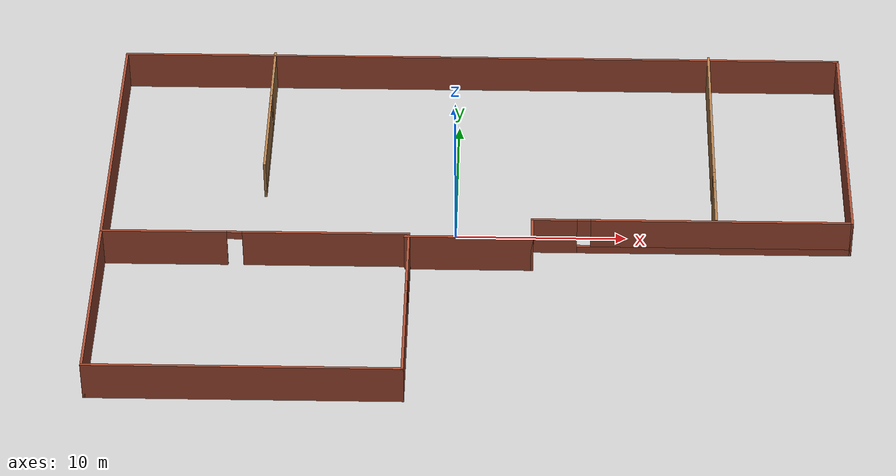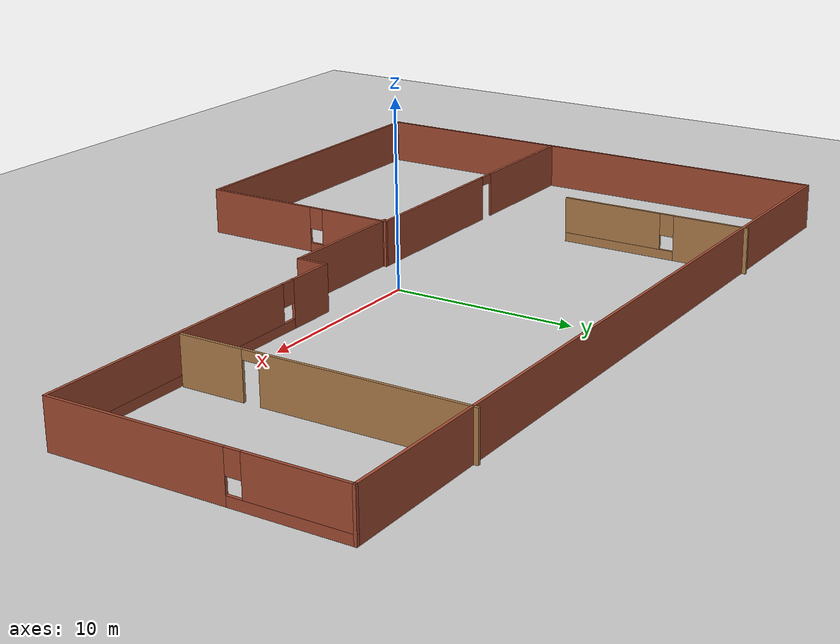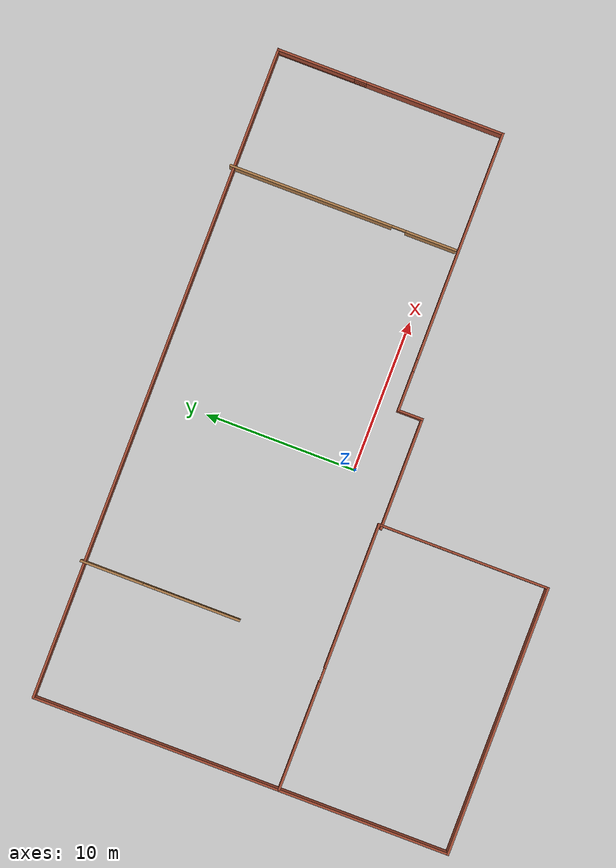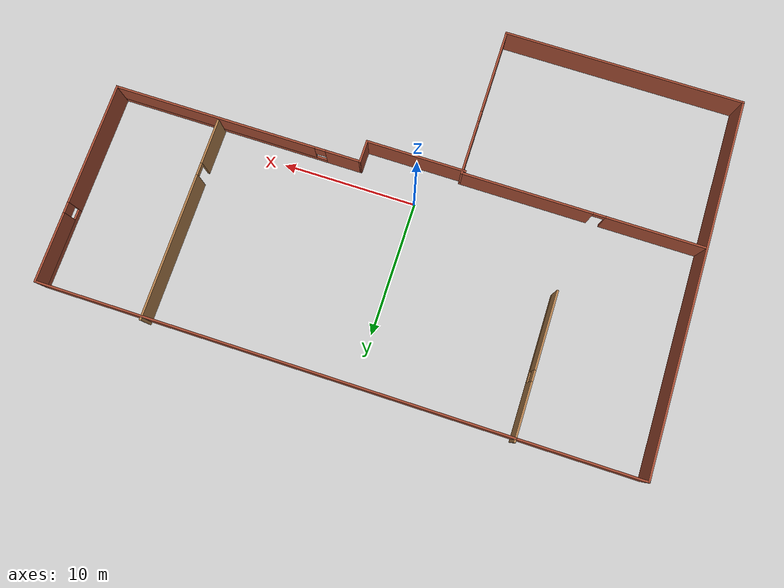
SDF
<sdf version="1.7">
 <world name="default">
  <light name="sun" type="directional">
   <pose>0 0 10 0 -0 0</pose>
   <diffuse>0.8 0.8 0.8 1</diffuse>
   <specular>0.2 0.2 0.2 1</specular>
   <attenuation>
    <range>1000</range>
    <constant>0.9</constant>
    <linear>0.01</linear>
    <quadratic>0.001</quadratic>
   </attenuation>
   <direction>-0.5 0.1 -0.9</direction>
   <spot><inner_angle>0</inner_angle><outer_angle>0</outer_angle><falloff>0</falloff></spot>
  </light>
  <model name="ground_plane">
   <static>1</static>
   <link name="link">
    <collision name="collision">
     <geometry><plane><normal>0 0 1</normal><size>100 100</size></plane></geometry>
     <surface>
      <contact><collide_bitmask>65535</collide_bitmask></contact>
      <friction><ode><mu>100</mu><mu2>50</mu2></ode></friction>
     </surface>
    </collision>
    <visual name="visual">
     <cast_shadows>0</cast_shadows>
     <geometry><plane><normal>0 0 1</normal><size>100 100</size></plane></geometry>
     <material>
      <script><uri>file://media/materials/scripts/gazebo.material</uri><name>Gazebo/Grey</name></script>
     </material>
    </visual>
   </link>
  </model>
  <gravity>0 0 -9.8</gravity>
  <magnetic_field>6e-06 2.3e-05 -4.2e-05</magnetic_field>
  <atmosphere type="adiabatic"/>
  <physics type="ode">
   <max_step_size>0.001</max_step_size>
   <real_time_factor>1</real_time_factor>
   <real_time_update_rate>1000</real_time_update_rate>
  </physics>
  <scene><ambient>0.4 0.4 0.4 1</ambient><background>0.7 0.7 0.7 1</background><shadows>1</shadows></scene>
  <audio><device>default</device></audio>
  <spherical_coordinates>
   <surface_model>EARTH_WGS84</surface_model>
   <latitude_deg>0</latitude_deg>
   <longitude_deg>0</longitude_deg>
   <elevation>0</elevation>
   <heading_deg>0</heading_deg>
  </spherical_coordinates>
  <model name="house_world">
   <pose>1.28 0.043787 0 0 -0 0</pose>
   <link name="Wall_1">
    <collision name="Wall_1_Collision">
     <geometry><box><size>7.5 0.15 2.5</size></box></geometry>
     <pose>0 0 1.25 0 -0 0</pose>
    </collision>
    <visual name="Wall_1_Visual">
     <pose>0 0 1.25 0 -0 0</pose>
     <geometry><box><size>7.5 0.15 2.5</size></box></geometry>
     <material>
      <script><uri>file://media/materials/scripts/gazebo.material</uri><name>Gazebo/Bricks</name></script>
      <ambient>1 1 1 1</ambient>
     </material>
     <meta><layer>0</layer></meta>
    </visual>
    <pose>-0.475 -2.88379 0 0 -0 0</pose>
   </link>
   <link name="Wall_10">
    <pose>-12.875 -2.68379 0 0 -0 3.14159</pose>
    <visual name="Wall_10_Visual_0">
     <pose>-4.13139 0 1.25 0 -0 0</pose>
     <geometry><box><size>9.73722 0.15 2.5</size></box></geometry>
     <material>
      <script><uri>file://media/materials/scripts/gazebo.material</uri><name>Gazebo/Bricks</name></script>
      <ambient>1 1 1 1</ambient>
     </material>
     <meta><layer>0</layer></meta>
    </visual>
    <collision name="Wall_10_Collision_0">
     <geometry><box><size>9.73722 0.15 2.5</size></box></geometry>
     <pose>-4.13139 0 1.25 0 -0 0</pose>
    </collision>
    <visual name="Wall_10_Visual_1">
     <pose>5.31861 0 1.25 0 -0 0</pose>
     <geometry><box><size>7.36278 0.15 2.5</size></box></geometry>
     <material>
      <script><uri>file://media/materials/scripts/gazebo.material</uri><name>Gazebo/Bricks</name></script>
      <ambient>1 1 1 1</ambient>
     </material>
     <meta><layer>0</layer></meta>
    </visual>
    <collision name="Wall_10_Collision_1">
     <geometry><box><size>7.36278 0.15 2.5</size></box></geometry>
     <pose>5.31861 0 1.25 0 -0 0</pose>
    </collision>
    <visual name="Wall_10_Visual_2">
     <pose>1.18722 0 2.25 0 -0 0</pose>
     <geometry><box><size>0.9 0.15 0.5</size></box></geometry>
     <material>
      <script><uri>file://media/materials/scripts/gazebo.material</uri><name>Gazebo/Bricks</name></script>
      <ambient>1 1 1 1</ambient>
     </material>
     <meta><layer>0</layer></meta>
    </visual>
    <collision name="Wall_10_Collision_2">
     <geometry><box><size>0.9 0.15 0.5</size></box></geometry>
     <pose>1.18722 0 2.25 0 -0 0</pose>
    </collision>
   </link>
   <link name="Wall_12">
    <pose>-12.7009 8.73379 0 0 -0 -1.5708</pose>
    <visual name="Wall_12_Visual_0">
     <pose>-3.26413 0 1.25 0 -0 0</pose>
     <geometry><box><size>4.22174 0.15 2.5</size></box></geometry>
     <material>
      <script><uri>file://media/materials/scripts/gazebo.material</uri><name>Gazebo/Wood</name></script>
      <ambient>1 1 1 1</ambient>
     </material>
     <meta><layer>0</layer></meta>
    </visual>
    <collision name="Wall_12_Collision_0">
     <geometry><box><size>4.22174 0.15 2.5</size></box></geometry>
     <pose>-3.26413 0 1.25 0 -0 0</pose>
    </collision>
    <visual name="Wall_12_Visual_1">
     <pose>2.11087 0 0.25 0 -0 0</pose>
     <geometry><box><size>6.52826 0.15 0.5</size></box></geometry>
     <material>
      <script><uri>file://media/materials/scripts/gazebo.material</uri><name>Gazebo/Wood</name></script>
      <ambient>1 1 1 1</ambient>
     </material>
     <meta><layer>0</layer></meta>
    </visual>
    <collision name="Wall_12_Collision_1">
     <geometry><box><size>6.52826 0.15 0.5</size></box></geometry>
     <pose>2.11087 0 0.25 0 -0 0</pose>
    </collision>
    <visual name="Wall_12_Visual_2">
     <pose>2.51087 0 1.5 0 -0 0</pose>
     <geometry><box><size>5.72826 0.15 2</size></box></geometry>
     <material>
      <script><uri>file://media/materials/scripts/gazebo.material</uri><name>Gazebo/Wood</name></script>
      <ambient>1 1 1 1</ambient>
     </material>
     <meta><layer>0</layer></meta>
    </visual>
    <collision name="Wall_12_Collision_2">
     <geometry><box><size>5.72826 0.15 2</size></box></geometry>
     <pose>2.51087 0 1.5 0 -0 0</pose>
    </collision>
    <visual name="Wall_12_Visual_3">
     <pose>-0.753259 0 1.9 0 -0 0</pose>
     <geometry><box><size>0.8 0.15 1.2</size></box></geometry>
     <material>
      <script><uri>file://media/materials/scripts/gazebo.material</uri><name>Gazebo/Wood</name></script>
      <ambient>1 1 1 1</ambient>
     </material>
     <meta><layer>0</layer></meta>
    </visual>
    <collision name="Wall_12_Collision_3">
     <geometry><box><size>0.8 0.15 1.2</size></box></geometry>
     <pose>-0.753259 0 1.9 0 -0 0</pose>
    </collision>
   </link>
   <link name="Wall_14">
    <pose>13.9063 6.48379 0 0 -0 -1.5708</pose>
    <visual name="Wall_14_Visual_0">
     <pose>-2.16466 0 1.25 0 -0 0</pose>
     <geometry><box><size>10.9207 0.15 2.5</size></box></geometry>
     <material>
      <script><uri>file://media/materials/scripts/gazebo.material</uri><name>Gazebo/Wood</name></script>
      <ambient>1 1 1 1</ambient>
     </material>
     <meta><layer>0</layer></meta>
    </visual>
    <collision name="Wall_14_Collision_0">
     <geometry><box><size>10.9207 0.15 2.5</size></box></geometry>
     <pose>-2.16466 0 1.25 0 -0 0</pose>
    </collision>
    <visual name="Wall_14_Visual_1">
     <pose>5.91034 0 1.25 0 -0 0</pose>
     <geometry><box><size>3.42932 0.15 2.5</size></box></geometry>
     <material>
      <script><uri>file://media/materials/scripts/gazebo.material</uri><name>Gazebo/Wood</name></script>
      <ambient>1 1 1 1</ambient>
     </material>
     <meta><layer>0</layer></meta>
    </visual>
    <collision name="Wall_14_Collision_1">
     <geometry><box><size>3.42932 0.15 2.5</size></box></geometry>
     <pose>5.91034 0 1.25 0 -0 0</pose>
    </collision>
    <visual name="Wall_14_Visual_2">
     <pose>3.74568 0 2.25 0 -0 0</pose>
     <geometry><box><size>0.9 0.15 0.5</size></box></geometry>
     <material>
      <script><uri>file://media/materials/scripts/gazebo.material</uri><name>Gazebo/Wood</name></script>
      <ambient>1 1 1 1</ambient>
     </material>
     <meta><layer>0</layer></meta>
    </visual>
    <collision name="Wall_14_Collision_2">
     <geometry><box><size>0.9 0.15 0.5</size></box></geometry>
     <pose>3.74568 0 2.25 0 -0 0</pose>
    </collision>
   </link>
   <link name="Wall_3">
    <collision name="Wall_3_Collision">
     <geometry><box><size>1.75 0.15 2.5</size></box></geometry>
     <pose>0 0 1.25 0 -0 0</pose>
    </collision>
    <visual name="Wall_3_Visual">
     <pose>0 0 1.25 0 -0 0</pose>
     <geometry><box><size>1.75 0.15 2.5</size></box></geometry>
     <material>
      <script><uri>file://media/materials/scripts/gazebo.material</uri><name>Gazebo/Bricks</name></script>
      <ambient>1 1 1 1</ambient>
     </material>
     <meta><layer>0</layer></meta>
    </visual>
    <pose>3.2 -2.08379 0 0 -0 1.5708</pose>
   </link>
   <link name="Wall_4">
    <pose>12.5 -1.28379 0 0 -0 0</pose>
    <visual name="Wall_4_Visual_0">
     <pose>-8.03354 0 1.25 0 -0 0</pose>
     <geometry><box><size>2.68292 0.15 2.5</size></box></geometry>
     <material>
      <script><uri>file://media/materials/scripts/gazebo.material</uri><name>Gazebo/Bricks</name></script>
      <ambient>1 1 1 1</ambient>
     </material>
     <meta><layer>0</layer></meta>
    </visual>
    <collision name="Wall_4_Collision_0">
     <geometry><box><size>2.68292 0.15 2.5</size></box></geometry>
     <pose>-8.03354 0 1.25 0 -0 0</pose>
    </collision>
    <visual name="Wall_4_Visual_1">
     <pose>1.34146 0 0.25 0 -0 0</pose>
     <geometry><box><size>16.0671 0.15 0.5</size></box></geometry>
     <material>
      <script><uri>file://media/materials/scripts/gazebo.material</uri><name>Gazebo/Bricks</name></script>
      <ambient>1 1 1 1</ambient>
     </material>
     <meta><layer>0</layer></meta>
    </visual>
    <collision name="Wall_4_Collision_1">
     <geometry><box><size>16.0671 0.15 0.5</size></box></geometry>
     <pose>1.34146 0 0.25 0 -0 0</pose>
    </collision>
    <visual name="Wall_4_Visual_2">
     <pose>1.74146 0 1.5 0 -0 0</pose>
     <geometry><box><size>15.2671 0.15 2</size></box></geometry>
     <material>
      <script><uri>file://media/materials/scripts/gazebo.material</uri><name>Gazebo/Bricks</name></script>
      <ambient>1 1 1 1</ambient>
     </material>
     <meta><layer>0</layer></meta>
    </visual>
    <collision name="Wall_4_Collision_2">
     <geometry><box><size>15.2671 0.15 2</size></box></geometry>
     <pose>1.74146 0 1.5 0 -0 0</pose>
    </collision>
    <visual name="Wall_4_Visual_3">
     <pose>-6.29208 0 1.9 0 -0 0</pose>
     <geometry><box><size>0.8 0.15 1.2</size></box></geometry>
     <material>
      <script><uri>file://media/materials/scripts/gazebo.material</uri><name>Gazebo/Bricks</name></script>
      <ambient>1 1 1 1</ambient>
     </material>
     <meta><layer>0</layer></meta>
    </visual>
    <collision name="Wall_4_Collision_3">
     <geometry><box><size>0.8 0.15 1.2</size></box></geometry>
     <pose>-6.29208 0 1.9 0 -0 0</pose>
    </collision>
   </link>
   <link name="Wall_5">
    <pose>21.8 6.26621 0 0 -0 1.5708</pose>
    <visual name="Wall_5_Visual_0">
     <pose>-3.01033 0 1.25 0 -0 0</pose>
     <geometry><box><size>9.22934 0.15 2.5</size></box></geometry>
     <material>
      <script><uri>file://media/materials/scripts/gazebo.material</uri><name>Gazebo/Bricks</name></script>
      <ambient>1 1 1 1</ambient>
     </material>
     <meta><layer>0</layer></meta>
    </visual>
    <collision name="Wall_5_Collision_0">
     <geometry><box><size>9.22934 0.15 2.5</size></box></geometry>
     <pose>-3.01033 0 1.25 0 -0 0</pose>
    </collision>
    <visual name="Wall_5_Visual_1">
     <pose>4.61467 0 0.25 0 -0 0</pose>
     <geometry><box><size>6.02066 0.15 0.5</size></box></geometry>
     <material>
      <script><uri>file://media/materials/scripts/gazebo.material</uri><name>Gazebo/Bricks</name></script>
      <ambient>1 1 1 1</ambient>
     </material>
     <meta><layer>0</layer></meta>
    </visual>
    <collision name="Wall_5_Collision_1">
     <geometry><box><size>6.02066 0.15 0.5</size></box></geometry>
     <pose>4.61467 0 0.25 0 -0 0</pose>
    </collision>
    <visual name="Wall_5_Visual_2">
     <pose>5.01467 0 1.5 0 -0 0</pose>
     <geometry><box><size>5.22066 0.15 2</size></box></geometry>
     <material>
      <script><uri>file://media/materials/scripts/gazebo.material</uri><name>Gazebo/Bricks</name></script>
      <ambient>1 1 1 1</ambient>
     </material>
     <meta><layer>0</layer></meta>
    </visual>
    <collision name="Wall_5_Collision_2">
     <geometry><box><size>5.22066 0.15 2</size></box></geometry>
     <pose>5.01467 0 1.5 0 -0 0</pose>
    </collision>
    <visual name="Wall_5_Visual_3">
     <pose>2.00434 0 1.9 0 -0 0</pose>
     <geometry><box><size>0.8 0.15 1.2</size></box></geometry>
     <material>
      <script><uri>file://media/materials/scripts/gazebo.material</uri><name>Gazebo/Bricks</name></script>
      <ambient>1 1 1 1</ambient>
     </material>
     <meta><layer>0</layer></meta>
    </visual>
    <collision name="Wall_5_Collision_3">
     <geometry><box><size>0.8 0.15 1.2</size></box></geometry>
     <pose>2.00434 0 1.9 0 -0 0</pose>
    </collision>
   </link>
   <link name="Wall_6">
    <collision name="Wall_6_Collision">
     <geometry><box><size>43.75 0.15 2.5</size></box></geometry>
     <pose>0 0 1.25 0 -0 0</pose>
    </collision>
    <visual name="Wall_6_Visual">
     <pose>0 0 1.25 0 -0 0</pose>
     <geometry><box><size>43.75 0.15 2.5</size></box></geometry>
     <material>
      <script><uri>file://media/materials/scripts/gazebo.material</uri><name>Gazebo/Bricks</name></script>
      <ambient>1 1 1 1</ambient>
     </material>
     <meta><layer>0</layer></meta>
    </visual>
    <pose>0 13.8162 0 0 -0 3.14159</pose>
   </link>
   <link name="Wall_7">
    <collision name="Wall_7_Collision">
     <geometry><box><size>28 0.15 2.5</size></box></geometry>
     <pose>0 0 1.25 0 -0 0</pose>
    </collision>
    <visual name="Wall_7_Visual">
     <pose>0 0 1.25 0 -0 0</pose>
     <geometry><box><size>28 0.15 2.5</size></box></geometry>
     <material>
      <script><uri>file://media/materials/scripts/gazebo.material</uri><name>Gazebo/Bricks</name></script>
      <ambient>1 1 1 1</ambient>
     </material>
     <meta><layer>0</layer></meta>
    </visual>
    <pose>-21.8 -0.108787 0 0 -0 -1.5708</pose>
   </link>
   <link name="Wall_8">
    <collision name="Wall_8_Collision">
     <geometry><box><size>18 0.15 2.5</size></box></geometry>
     <pose>0 0 1.25 0 -0 0</pose>
    </collision>
    <visual name="Wall_8_Visual">
     <pose>0 0 1.25 0 -0 0</pose>
     <geometry><box><size>18 0.15 2.5</size></box></geometry>
     <material>
      <script><uri>file://media/materials/scripts/gazebo.material</uri><name>Gazebo/Bricks</name></script>
      <ambient>1 1 1 1</ambient>
     </material>
     <meta><layer>0</layer></meta>
    </visual>
    <pose>-12.875 -14.0338 0 0 -0 0</pose>
   </link>
   <link name="Wall_9">
    <pose>-3.95 -8.35879 0 0 -0 1.5708</pose>
    <visual name="Wall_9_Visual_0">
     <pose>-2.48037 0 1.25 0 -0 0</pose>
     <geometry><box><size>6.53927 0.15 2.5</size></box></geometry>
     <material>
      <script><uri>file://media/materials/scripts/gazebo.material</uri><name>Gazebo/Bricks</name></script>
      <ambient>1 1 1 1</ambient>
     </material>
     <meta><layer>0</layer></meta>
    </visual>
    <collision name="Wall_9_Collision_0">
     <geometry><box><size>6.53927 0.15 2.5</size></box></geometry>
     <pose>-2.48037 0 1.25 0 -0 0</pose>
    </collision>
    <visual name="Wall_9_Visual_1">
     <pose>3.26963 0 0.25 0 -0 0</pose>
     <geometry><box><size>4.96073 0.15 0.5</size></box></geometry>
     <material>
      <script><uri>file://media/materials/scripts/gazebo.material</uri><name>Gazebo/Bricks</name></script>
      <ambient>1 1 1 1</ambient>
     </material>
     <meta><layer>0</layer></meta>
    </visual>
    <collision name="Wall_9_Collision_1">
     <geometry><box><size>4.96073 0.15 0.5</size></box></geometry>
     <pose>3.26963 0 0.25 0 -0 0</pose>
    </collision>
    <visual name="Wall_9_Visual_2">
     <pose>3.66963 0 1.5 0 -0 0</pose>
     <geometry><box><size>4.16073 0.15 2</size></box></geometry>
     <material>
      <script><uri>file://media/materials/scripts/gazebo.material</uri><name>Gazebo/Bricks</name></script>
      <ambient>1 1 1 1</ambient>
     </material>
     <meta><layer>0</layer></meta>
    </visual>
    <collision name="Wall_9_Collision_2">
     <geometry><box><size>4.16073 0.15 2</size></box></geometry>
     <pose>3.66963 0 1.5 0 -0 0</pose>
    </collision>
    <visual name="Wall_9_Visual_3">
     <pose>1.18927 0 1.9 0 -0 0</pose>
     <geometry><box><size>0.8 0.15 1.2</size></box></geometry>
     <material>
      <script><uri>file://media/materials/scripts/gazebo.material</uri><name>Gazebo/Bricks</name></script>
      <ambient>1 1 1 1</ambient>
     </material>
     <meta><layer>0</layer></meta>
    </visual>
    <collision name="Wall_9_Collision_3">
     <geometry><box><size>0.8 0.15 1.2</size></box></geometry>
     <pose>1.18927 0 1.9 0 -0 0</pose>
    </collision>
   </link>
   <static>1</static>
  </model>
 </world>
</sdf>
